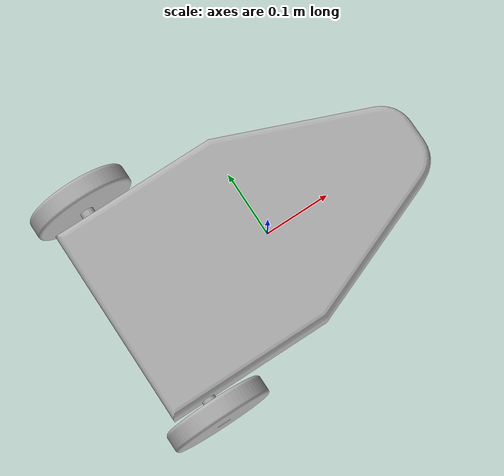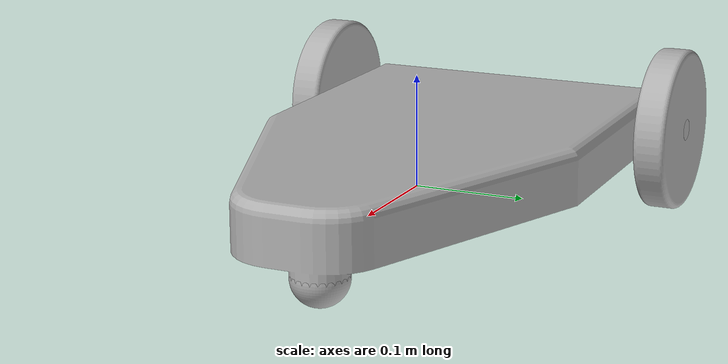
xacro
<?xml version="1.0" ?>
<robot name="ROS_urdf_test_02" xmlns:xacro="http://www.ros.org/wiki/xacro">

<xacro:include filename="$(find ROS_urdf_test_02_description)/urdf/materials.xacro" />
<xacro:include filename="$(find ROS_urdf_test_02_description)/urdf/ROS_urdf_test_02.trans" />

<xacro:include filename="$(find ROS_urdf_test_02_description)/gazebo/ROS_urdf_test_02_materials.gazebo" />
<xacro:include filename="$(find ROS_urdf_test_02_description)/gazebo/ROS_urdf_test_02_physics.gazebo" />
<xacro:include filename="$(find ROS_urdf_test_02_description)/gazebo/ROS_urdf_test_02_plugins.gazebo" />

<link name="base_link">
  <inertial>
    <origin rpy="0 0 0" xyz="-0.03314741034777987 0.0 0.02459712434119629"/>
    <mass value="49.24753665360008"/>
    <inertia ixx="0.315493" ixy="0.0" ixz="0.003186" iyy="0.880649" iyz="-0.0" izz="1.174896"/>
  </inertial>
  <visual>
    <origin rpy="0 0 0" xyz="0 0 0"/>
    <geometry>
      <mesh filename="package://ROS_urdf_test_02_description/meshes/base_link.stl" scale="0.001 0.001 0.001"/>
    </geometry>
    <material name="silver"/>
  </visual>
  <collision>
    <origin rpy="0 0 0" xyz="0 0 0"/>
    <geometry>
      <mesh filename="package://ROS_urdf_test_02_description/meshes/base_link.stl" scale="0.001 0.001 0.001"/>
    </geometry>
  </collision>
</link>

<link name="Lwheel_1_1_1_1_1">
  <inertial>
    <origin rpy="0 0 0" xyz="1.912359159916832e-14 -0.015000000000000041 -6.938893903907228e-18"/>
    <mass value="4.04854206026117"/>
    <inertia ixx="0.006043" ixy="-0.0" ixz="0.0" iyy="0.011487" iyz="-0.0" izz="0.006043"/>
  </inertial>
  <visual>
    <origin rpy="0 0 0" xyz="0.195 -0.19 -0.025"/>
    <geometry>
      <mesh filename="package://ROS_urdf_test_02_description/meshes/Lwheel_1_1_1_1_1.stl" scale="0.001 0.001 0.001"/>
    </geometry>
    <material name="silver"/>
  </visual>
  <collision>
    <origin rpy="0 0 0" xyz="0.195 -0.19 -0.025"/>
    <geometry>
      <mesh filename="package://ROS_urdf_test_02_description/meshes/Lwheel_1_1_1_1_1.stl" scale="0.001 0.001 0.001"/>
    </geometry>
  </collision>
</link>

<link name="Rwheel_1_1_1_1_1">
  <inertial>
    <origin rpy="0 0 0" xyz="-1.915134717478395e-14 0.015000000000000041 -1.3877787807814457e-17"/>
    <mass value="4.048542060261174"/>
    <inertia ixx="0.006043" ixy="0.0" ixz="-0.0" iyy="0.011487" iyz="-0.0" izz="0.006043"/>
  </inertial>
  <visual>
    <origin rpy="0 0 0" xyz="0.195 0.19 -0.025"/>
    <geometry>
      <mesh filename="package://ROS_urdf_test_02_description/meshes/Rwheel_1_1_1_1_1.stl" scale="0.001 0.001 0.001"/>
    </geometry>
    <material name="silver"/>
  </visual>
  <collision>
    <origin rpy="0 0 0" xyz="0.195 0.19 -0.025"/>
    <geometry>
      <mesh filename="package://ROS_urdf_test_02_description/meshes/Rwheel_1_1_1_1_1.stl" scale="0.001 0.001 0.001"/>
    </geometry>
  </collision>
</link>

<link name="caster_1_1_1_1_1">
  <inertial>
    <origin rpy="0 0 0" xyz="-6.759809081935408e-08 -1.6653345369377347e-18 0.0"/>
    <mass value="0.5137812985558311"/>
    <inertia ixx="0.000128" ixy="0.0" ixz="-0.0" iyy="0.000128" iyz="0.0" izz="0.000128"/>
  </inertial>
  <visual>
    <origin rpy="0 0 0" xyz="-0.187834 -0.0 0.025"/>
    <geometry>
      <mesh filename="package://ROS_urdf_test_02_description/meshes/caster_1_1_1_1_1.stl" scale="0.001 0.001 0.001"/>
    </geometry>
    <material name="silver"/>
  </visual>
  <collision>
    <origin rpy="0 0 0" xyz="-0.187834 -0.0 0.025"/>
    <geometry>
      <mesh filename="package://ROS_urdf_test_02_description/meshes/caster_1_1_1_1_1.stl" scale="0.001 0.001 0.001"/>
    </geometry>
  </collision>
</link>

<joint name="Rev4" type="continuous">
  <origin rpy="0 0 0" xyz="-0.195 0.19 0.025"/>
  <parent link="base_link"/>
  <child link="Lwheel_1_1_1_1_1"/>
  <axis xyz="0.0 1.0 0.0"/>
</joint>

<joint name="Rev5" type="continuous">
  <origin rpy="0 0 0" xyz="-0.195 -0.19 0.025"/>
  <parent link="base_link"/>
  <child link="Rwheel_1_1_1_1_1"/>
  <axis xyz="0.0 -1.0 0.0"/>
</joint>

<joint name="Rev6" type="continuous">
  <origin rpy="0 0 0" xyz="0.187834 0.0 -0.025"/>
  <parent link="base_link"/>
  <child link="caster_1_1_1_1_1"/>
  <axis xyz="0.0 0.0 -1.0"/>
</joint>

</robot>

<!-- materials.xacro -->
<robot name="ROS_urdf_test_02" xmlns:xacro="http://www.ros.org/wiki/xacro" >

<material name="silver">
  <color rgba="0.700 0.700 0.700 1.000"/>
</material>

</robot>

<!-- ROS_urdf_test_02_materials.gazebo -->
<robot name="ROS_urdf_test_02" xmlns:xacro="http://www.ros.org/wiki/xacro" >

<xacro:property name="body_color" value="Gazebo/Black" />
<xacro:property name="wheel_color" value="Gazebo/Blue" />

<gazebo reference="base_link">
  <material>${body_color}</material>
</gazebo>

<gazebo reference="Lwheel_1_1_1_1_1">
  <material>${wheel_color}</material>
</gazebo>

<gazebo reference="Rwheel_1_1_1_1_1">
  <material>${wheel_color}</material>
</gazebo>

<gazebo reference="caster_1_1_1_1_1">
  <material>${wheel_color}</material>
</gazebo>

</robot>
